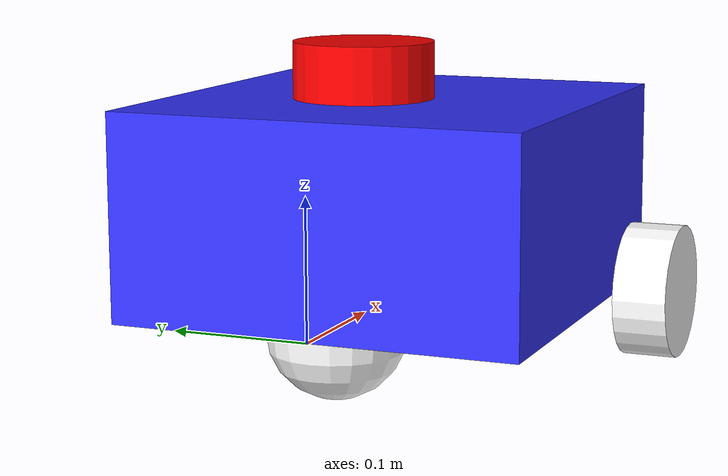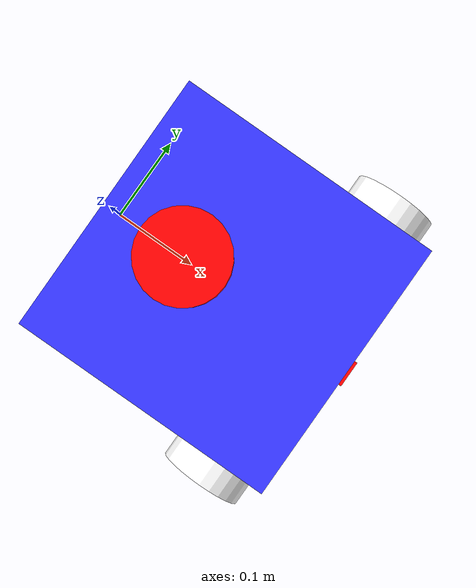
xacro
<?xml version="1.0"?>
<robot xmlns:xacro="http://www.ros.org/wiki/xacro"  name="robot">

    <xacro:include filename = "robot_core.xacro"/>

    <!--xacro:include filename = "robot_core_2.xacro"/-->

    <xacro:include filename = "gazebo_control.xacro"/>

    <!--xacro:include filename = "pendulum.xacro"/-->

    <xacro:include filename = "lidar.xacro"/>

    <xacro:include filename = "camera.xacro"/>

</robot>

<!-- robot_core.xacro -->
<robot xmlns:xacro="http://www.ros.org/wiki/xacro">

    <xacro:include filename="inertial_macros.xacro"/>

    <material name="white">
        <color rgba="1 1 1 1"/>
    </material>

    <material name="orange">
        <color rgba="1 0.3 0.1 1"/>
    </material>

    <material name="blue">
        <color rgba="0.2 0.2 1 1"/>
    </material>

    <material name="black">
        <color rgba="0 0 0 1"/>
    </material>

    <material name="red">
        <color rgba="1 0 0 1"/>
    </material>

    <gazebo>
        <plugin filename="libgazebo_ros_control.so" name="gazebo_ros_control">
          <robotSimType>sr_gazebo_sim/SrGazeboHWSim</robotSimType>
        </plugin>
    </gazebo>

    <!-- BASE LINK/-->

    <link name="base_link">

    </link>

    <!--CHASSIS LINK/-->

    <joint name="chassis_joint" type="fixed">
        <parent link="base_link"/>
        <child link="chassis"/>
        <origin xyz="0 0 0"/>
    </joint>

    <link name="chassis">
        <visual>
            <origin xyz="0.15 0 0.075"/>
            <geometry>
                <box size="0.3 0.3 0.15"/>
            </geometry>
            <material name="blue"/>
        </visual>
        <collision>
            <origin xyz="0.15 0 0.075"/>
            <geometry>
                <box size="0.3 0.3 0.15"/>
            </geometry>
        </collision>
        <xacro:inertial_box mass="0.5" x="0.3" y="0.3" z="0.15">
            <origin xyz="0.15 0 0.075" rpy="0 0 0"/>
        </xacro:inertial_box>
    </link>

    <gazebo reference = "chassis">
        <material>Gazebo/Blue</material>
    </gazebo>

    <!-- LEFT WHEEL LINK -->

    <joint name="left_wheel_joint" type="continuous">
            <parent link="base_link"/>
            <child link="left_wheel"/>
            <origin xyz="0.25 0.175 0" rpy="-${pi/2} 0 0"/>
            <axis xyz="0 0 1"/>
    </joint>

    <link name="left_wheel">
        <visual>
            <geometry>
                <cylinder radius="0.05" length="0.04"/>
            </geometry>
            <material name="white"/>
        </visual>
        <collision>
            <geometry>
                <cylinder radius="0.05" length="0.04"/>
            </geometry>
        </collision>
        <xacro:inertial_cylinder mass="0.15"  radius="0.05" length="0.04">
            <origin xyz="0 0 0" rpy="0 0 0"/>
        </xacro:inertial_cylinder >
    </link>

    <gazebo reference = "left_wheel">
        <material>Gazebo/White</material>
    </gazebo>

 <!-- RIGHT WHEEL LINK -->

    <joint name="right_wheel_joint" type="continuous">
            <parent link="base_link"/>
            <child link="right_wheel"/>
            <origin xyz="0.25 -0.175 0" rpy="${pi/2} 0 0"/>
            <axis xyz="0 0 -1"/>
    </joint>

    <link name="right_wheel">
        <visual>
            <origin xyz="0 0 0" rpy="0 0 0"/>
            <geometry>
                <cylinder radius="0.05" length="0.04"/>
            </geometry>
            <material name="white"/>
        </visual>
        <collision>
            <geometry>
                <cylinder radius="0.05" length="0.04"/>
            </geometry>
        </collision>
        <xacro:inertial_cylinder mass="0.15" length="0.04" radius="0.05" >
            <origin xyz="0 0 0" rpy="0 0 0"/>
        </xacro:inertial_cylinder >
    </link>

    <gazebo reference = "right_wheel">
        <material>Gazebo/White</material>
    </gazebo>

 <!-- CASTER WHEEL LINK-->

    <joint name="caster_wheel_joint" type="fixed">
        <parent link="chassis"/>
        <child link="caster_wheel"/>
        <origin xyz="0.05 0 0"/>
    </joint>

    <link name="caster_wheel">
        <visual>
            <geometry>
                <sphere radius="0.05"/>
            </geometry>
            <material name="white"/>
        </visual>
        <collision>
            <geometry>
                <sphere radius="0.05"/>
            </geometry>
        </collision>
        <xacro:inertial_sphere mass="0.3" radius="0.05" >
            <origin xyz="0 0 0" rpy="0 0 0"/>
        </xacro:inertial_sphere>
    </link>

    <gazebo reference = "caster_wheel">
        <material>Gazebo/White</material>
        <mu1 value = "0.001"/>
        <mu2 value = "0.001"/>
    </gazebo>

</robot>

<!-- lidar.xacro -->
<robot xmlns:xacro="http://www.ros.org/wiki/xacro" >

    <joint name="laser_joint" type="fixed">
        <parent link="chassis"/>
        <child link="laser_frame"/>
        <origin xyz="0.1 0 0.175" rpy="0 0 0"/>
    </joint>

    <link name="laser_frame">
        <visual>
            <geometry>
                <cylinder radius="0.05" length="0.04"/>
            </geometry>
            <material name="red"/>
        </visual>
        <collision>
            <geometry>
                <cylinder radius="0.05" length="0.04"/>
            </geometry>
        </collision>
        <xacro:inertial_cylinder mass="0.1" length="0.04" radius="0.05">
            <origin xyz="0 0 0" rpy="0 0 0"/>
        </xacro:inertial_cylinder>
    </link>

</robot>

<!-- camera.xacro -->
<robot xmlns:xacro="http://www.ros.org/wiki/xacro" >

    <joint name="camera_joint" type="fixed">
        <parent link="chassis"/>
        <child link="camera_link"/>
        <origin xyz="0.305 0 0.08" rpy="0 0 0"/>
    </joint>

    <link name="camera_link">
        <visual>
            <geometry>
                <box size="0.01 0.03 0.03"/>
            </geometry>
            <material name="red"/>
        </visual>
    </link>

     <joint name="camera_optical_joint" type="fixed">
        <parent link="camera_link"/>
        <child link="camera_link_optical"/>
        <origin xyz="0 0 0" rpy="${-pi/2} 0 ${-pi/2}"/>
    </joint>

    <link name="camera_link_optical"></link>

    <gazebo reference="camera_link">
        <material>Gazebo/Red</material>

        <sensor name="camera" type="camera">
            <pose> 0 0 0 0 0 0 </pose>
            <visualize>true</visualize>
            <update_rate>10</update_rate>
            <camera>
                <horizontal_fov>1.089</horizontal_fov>
                <image>
                    <format>R8G8B8</format>
                    <width>640</width>
                    <height>480</height>
                </image>
                <clip>
                    <near>0.05</near>
                    <far>8.0</far>
                </clip>
            </camera>
            <plugin name="camera_controller" filename="libgazebo_ros_camera.so">
                <frame_name>camera_link_optical</frame_name>
            </plugin>
        </sensor>
    </gazebo>
</robot>
